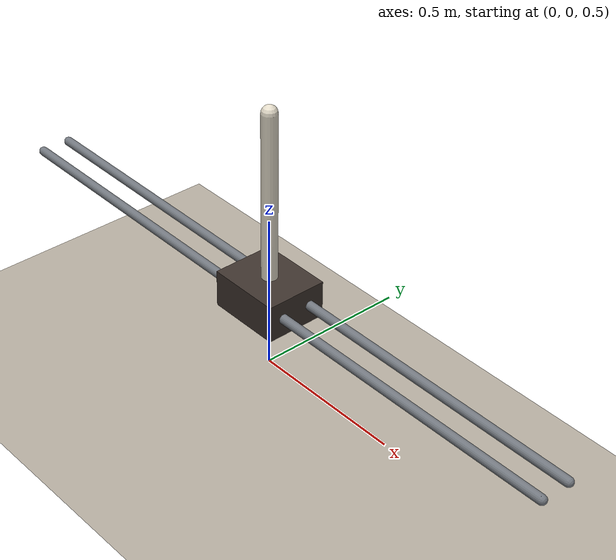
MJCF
<mujoco model="cart-pole">
  <include file="theme.xml"/>
  <option timestep="0.01">
    <flag contact="disable"/>
  </option>
  <worldbody>
    <camera name="side" pos="0 -3.0 1.0" xyaxes="1 0 0 0 .08 .997" fovy="42"/>
    <geom type="capsule" pos="0 .05 .75" zaxis="1 0 0" size=".015 1.1" rgba=".45 .47 .5 1"/>
    <geom type="capsule" pos="0 -.05 .75" zaxis="1 0 0" size=".015 1.1" rgba=".45 .47 .5 1"/>
    <body name="cart" pos="0 0 .75">
      <joint name="slide" type="slide" axis="1 0 0" range="-1 1" solreflimit=".08 1" damping=".05"/>
      <geom type="box" size=".12 .1 .06" mass="1" rgba=".24 .2 .18 1"/>
      <body name="pole">
        <joint name="hinge" axis="0 1 0" damping=".01"/>
        <geom type="capsule" fromto="0 0 0 0 0 .6" size=".025" mass=".3" rgba=".9 .87 .8 1"/>
      </body>
    </body>
  </worldbody>
  <actuator>
    <motor joint="slide" gear="15" ctrlrange="-1 1"/>
  </actuator>
  <keyframe>
    <key name="hang" qpos="0 3.14159265358979"/>
  </keyframe>
</mujoco>

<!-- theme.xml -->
<mujoco>
  <asset>
    <texture name="checker" type="2d" builtin="checker" rgb1=".72 .69 .64" rgb2=".68 .65 .6" width="300" height="300"/>
    <material name="ground" texture="checker" texrepeat=".625 .625" texuniform="true"/>
    <texture name="sky" type="skybox" builtin="flat" rgb1=".47 .45 .42" rgb2=".47 .45 .42" width="32" height="32"/>
  </asset>
  <visual>
    <headlight diffuse=".15 .15 .15" ambient=".3 .3 .3" specular=".2 .2 .2"/>
    <rgba haze=".47 .45 .42 1" fog=".47 .45 .42 1"/>
    <map fogstart="4" fogend="14"/>
    <quality shadowsize="4096" offsamples="8"/>
    <global offwidth="2400" offheight="1800"/>  <!-- offscreen renders match the window -->
  </visual>
  <worldbody>
    <geom name="floor" type="plane" size="0 0 .1" material="ground"/>
    <light name="sun" directional="true" dir="-.7 .5 -.6" pos="3.5 -2.5 5" diffuse=".65 .65 .65" specular=".3 .3 .3"/>
  </worldbody>
</mujoco>
